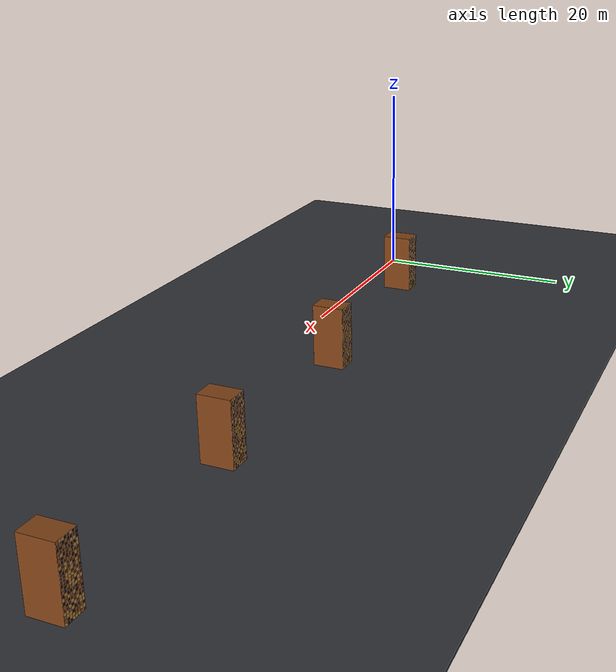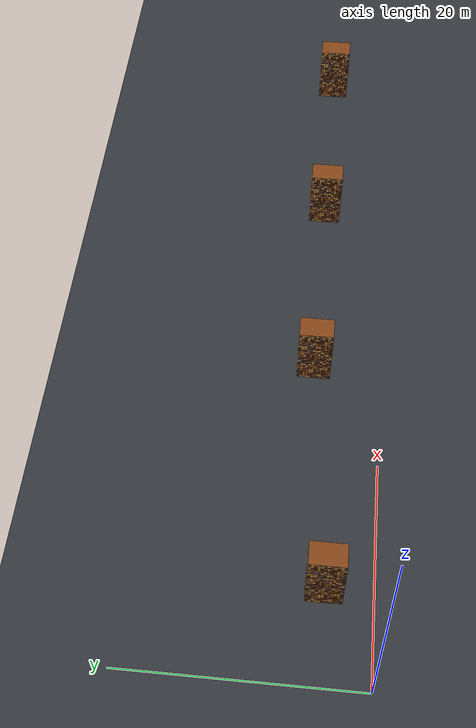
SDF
<sdf version="1.9">
 <world name="monocular_highspeed_10">
  <physics name="1ms" type="ignore">
   <max_step_size>0.001</max_step_size>
   <real_time_factor>1.0</real_time_factor>
  </physics>
  <plugin filename="gz-sim-physics-system" name="gz::sim::systems::Physics"/>
  <plugin filename="gz-sim-sensors-system" name="gz::sim::systems::Sensors">
   <render_engine>ogre2</render_engine>
  </plugin>
  <plugin filename="gz-sim-user-commands-system" name="gz::sim::systems::UserCommands"/>
  <plugin filename="gz-sim-scene-broadcaster-system" name="gz::sim::systems::SceneBroadcaster"/>
  <plugin filename="gz-sim-imu-system" name="gz::sim::systems::Imu"/>
  <plugin filename="gz-sim-magnetometer-system" name="gz::sim::systems::Magnetometer"/>
  <plugin filename="gz-sim-air-pressure-system" name="gz::sim::systems::AirPressure"/>
  <plugin filename="gz-sim-navsat-system" name="gz::sim::systems::NavSat"/>
  <spherical_coordinates>
   <surface_model>EARTH_WGS84</surface_model>
   <latitude_deg>-35.363262</latitude_deg>
   <longitude_deg>149.165237</longitude_deg>
   <elevation>584</elevation>
   <heading_deg>0</heading_deg>
  </spherical_coordinates>
  <magnetic_field>2.1e-5 5.0e-6 -4.2e-5</magnetic_field>
  <scene><ambient>0.45 0.45 0.45 1</ambient><background>0.08 0.1 0.14 1</background><grid>true</grid></scene>
  <light type="directional" name="sun">
   <pose>0 0 40 0 0 0</pose>
   <diffuse>0.9 0.9 0.9 1</diffuse>
   <direction>-0.4 0.2 -1</direction>
  </light>
  <model name="asphalt">
   <static>true</static>
   <pose>150 0 -0.15 0 0 0</pose>
   <link name="body">
    <collision name="collision"><geometry><box><size>400 60 0.3</size></box></geometry></collision>
    <visual name="visual">
     <geometry><box><size>400 60 0.3</size></box></geometry>
     <material><ambient>.19 .20 .22 1</ambient><diffuse>.19 .20 .22 1</diffuse></material>
    </visual>
   </link>
  </model>
  <include><name>obstacle_0</name><uri>model://monocular_textured_box</uri><pose>8 4 3 0 0 0</pose></include>
  <include><name>obstacle_1</name><uri>model://monocular_textured_box</uri><pose>30 6 3 0 0 0</pose></include>
  <include><name>obstacle_2</name><uri>model://monocular_textured_box</uri><pose>50 6 3 0 0 0</pose></include>
  <include><name>obstacle_3</name><uri>model://monocular_textured_box</uri><pose>70 6 3 0 0 0</pose></include>
 </world>
</sdf>
